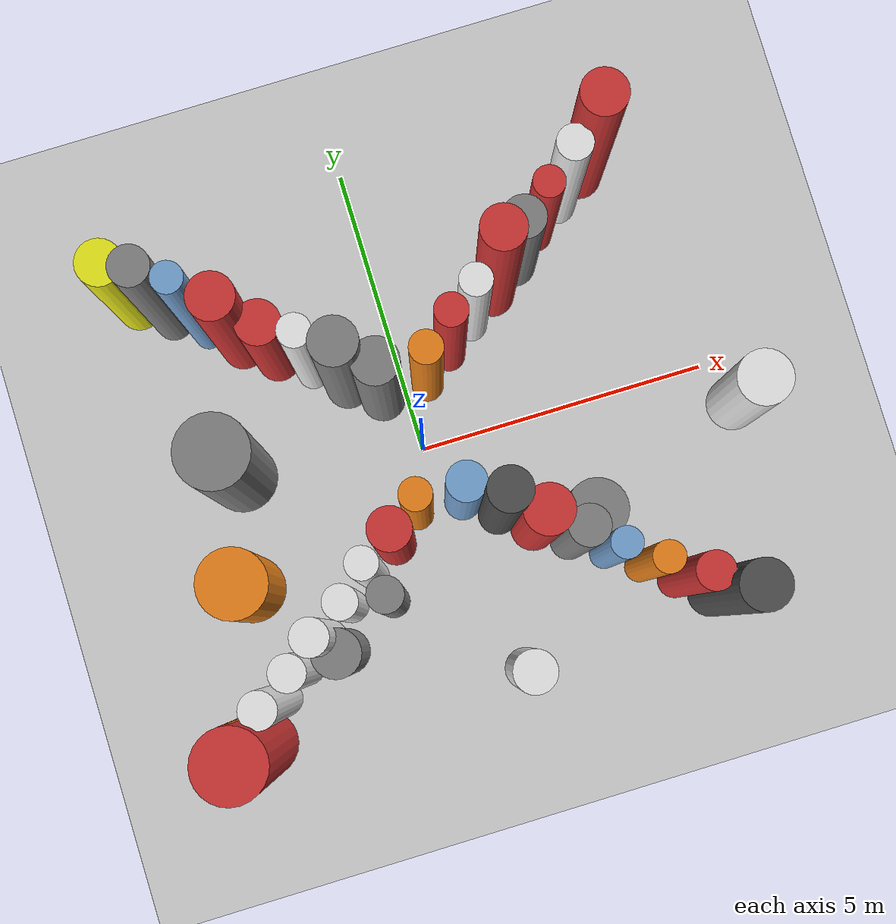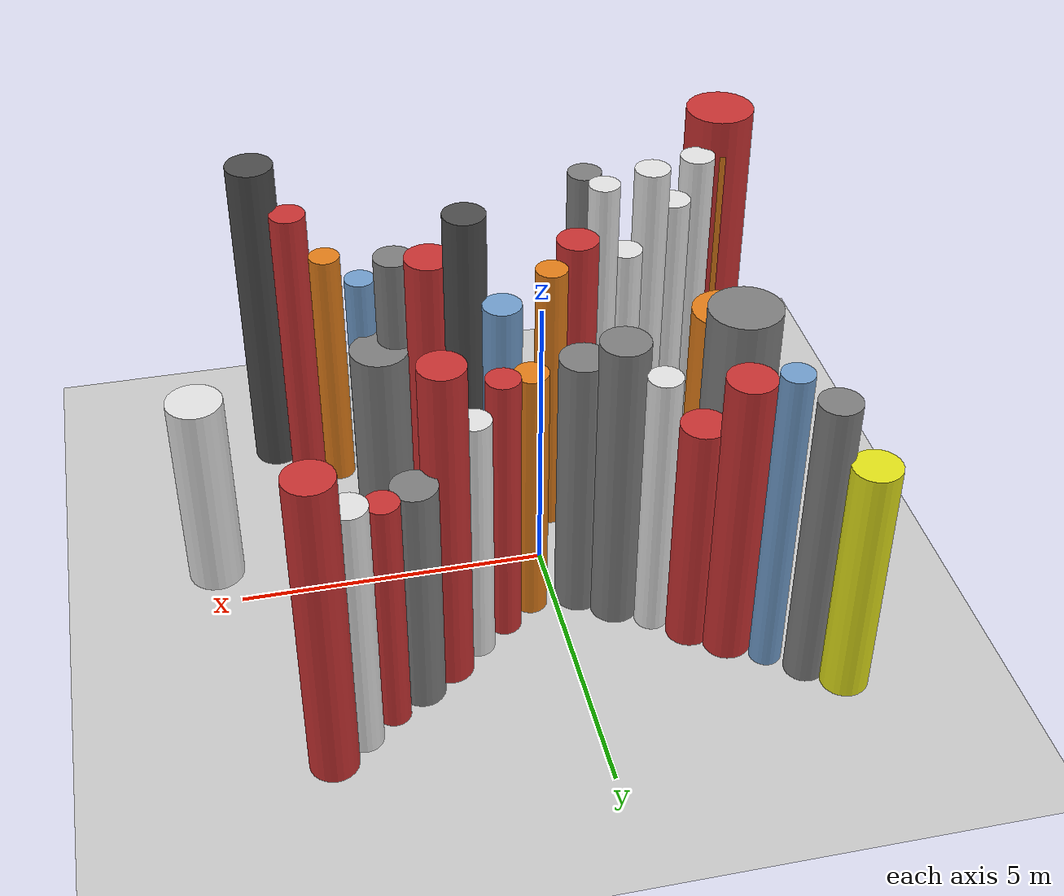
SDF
<?xml version='1.0'?>
<sdf version='1.6'>
  <world name='routeA_rl_v1__dense_recovery__rl_train__bottleneck_corridor__000068'>
    <!-- Sun light -->
    <light name='sun' type='directional'>
      <cast_shadows>1</cast_shadows>
      <pose>0 0 10 0 0 0</pose>
      <diffuse>0.8 0.8 0.8 1</diffuse>
      <specular>0.2 0.2 0.2 1</specular>
      <attenuation>
        <range>1000</range>
        <constant>0.9</constant>
        <linear>0.01</linear>
        <quadratic>0.001</quadratic>
      </attenuation>
      <direction>-0.5 0.1 -0.9</direction>
    </light>

    <!-- Ground plane -->
    <model name='ground_plane'>
      <static>1</static>
      <link name='link'>
        <collision name='collision'>
          <geometry>
            <plane>
              <normal>0 0 1</normal>
              <size>100 100</size>
            </plane>
          </geometry>
          <surface>
            <contact>
              <collide_bitmask>65535</collide_bitmask>
              <ode/>
            </contact>
            <friction>
              <ode>
                <mu>100</mu>
                <mu2>50</mu2>
              </ode>
              <torsional><ode/></torsional>
            </friction>
            <bounce/>
          </surface>
          <max_contacts>10</max_contacts>
        </collision>
        <visual name='visual'>
          <cast_shadows>0</cast_shadows>
          <geometry>
            <plane>
              <normal>0 0 1</normal>
              <size>100 100</size>
            </plane>
          </geometry>
          <material>
            <script>
              <uri>file://media/materials/scripts/gazebo.material</uri>
              <n>Gazebo/Grey</n>
            </script>
          </material>
        </visual>
      </link>
    </model>

    <!-- Environment -->
    <magnetic_field>6e-06 2.3e-05 -4.2e-05</magnetic_field>
    <atmosphere type='adiabatic'/>
    <physics name='default_physics' default='0' type='ode'>
      <gravity>0 0 -9.8</gravity>
      <max_step_size>0.004</max_step_size>
      <real_time_factor>1</real_time_factor>
      <real_time_update_rate>250</real_time_update_rate>
    </physics>
    <scene>
      <ambient>0.4 0.4 0.4 1</ambient>
      <background>0.7 0.7 0.7 1</background>
      <shadows>1</shadows>
    </scene>
    <wind/>
    <spherical_coordinates>
      <surface_model>EARTH_WGS84</surface_model>
      <latitude_deg>0</latitude_deg>
      <longitude_deg>0</longitude_deg>
      <elevation>0</elevation>
      <heading_deg>0</heading_deg>
    </spherical_coordinates>

    <!-- ============ OBSTACLES (40) ============ -->
    <model name='funnel_l_0'>
      <static>1</static>
      <link name='link'>
        <visual name='visual'>
          <geometry>
            <cylinder>
              <radius>0.3411</radius>
              <length>5.2813</length>
            </cylinder>
          </geometry>
          <material>
            <script>
              <n>Gazebo/Orange</n>
              <uri>file://media/materials/scripts/gazebo.material</uri>
            </script>
            <ambient>0.9 0.5 0.1 1</ambient>
          </material>
        </visual>
        <collision name='collision'>
          <geometry>
            <cylinder>
              <radius>0.3411</radius>
              <length>5.2813</length>
            </cylinder>
          </geometry>
          <max_contacts>10</max_contacts>
          <surface>
            <contact><ode/></contact>
            <bounce/>
            <friction>
              <ode><mu>1</mu><mu2>1</mu2></ode>
              <torsional><ode/></torsional>
            </friction>
          </surface>
        </collision>
      </link>
      <pose>-4.0000 -3.8000 2.6407 0 0 0.0000</pose>
    </model>

    <model name='funnel_r_0'>
      <static>1</static>
      <link name='link'>
        <visual name='visual'>
          <geometry>
            <cylinder>
              <radius>0.3788</radius>
              <length>4.2989</length>
            </cylinder>
          </geometry>
          <material>
            <script>
              <n>Gazebo/Yellow</n>
              <uri>file://media/materials/scripts/gazebo.material</uri>
            </script>
            <ambient>0.9 0.9 0.1 1</ambient>
          </material>
        </visual>
        <collision name='collision'>
          <geometry>
            <cylinder>
              <radius>0.3788</radius>
              <length>4.2989</length>
            </cylinder>
          </geometry>
          <max_contacts>10</max_contacts>
          <surface>
            <contact><ode/></contact>
            <bounce/>
            <friction>
              <ode><mu>1</mu><mu2>1</mu2></ode>
              <torsional><ode/></torsional>
            </friction>
          </surface>
        </collision>
      </link>
      <pose>-4.0000 3.8000 2.1495 0 0 0.0000</pose>
    </model>

    <model name='funnel_l_1'>
      <static>1</static>
      <link name='link'>
        <visual name='visual'>
          <geometry>
            <cylinder>
              <radius>0.2960</radius>
              <length>5.4035</length>
            </cylinder>
          </geometry>
          <material>
            <script>
              <n>Gazebo/White</n>
              <uri>file://media/materials/scripts/gazebo.material</uri>
            </script>
            <ambient>0.9 0.9 0.9 1</ambient>
          </material>
        </visual>
        <collision name='collision'>
          <geometry>
            <cylinder>
              <radius>0.2960</radius>
              <length>5.4035</length>
            </cylinder>
          </geometry>
          <max_contacts>10</max_contacts>
          <surface>
            <contact><ode/></contact>
            <bounce/>
            <friction>
              <ode><mu>1</mu><mu2>1</mu2></ode>
              <torsional><ode/></torsional>
            </friction>
          </surface>
        </collision>
      </link>
      <pose>-3.4857 -3.4071 2.7017 0 0 0.0000</pose>
    </model>

    <model name='funnel_r_1'>
      <static>1</static>
      <link name='link'>
        <visual name='visual'>
          <geometry>
            <cylinder>
              <radius>0.3290</radius>
              <length>5.2321</length>
            </cylinder>
          </geometry>
          <material>
            <script>
              <n>Gazebo/Grey</n>
              <uri>file://media/materials/scripts/gazebo.material</uri>
            </script>
            <ambient>0.5 0.5 0.5 1</ambient>
          </material>
        </visual>
        <collision name='collision'>
          <geometry>
            <cylinder>
              <radius>0.3290</radius>
              <length>5.2321</length>
            </cylinder>
          </geometry>
          <max_contacts>10</max_contacts>
          <surface>
            <contact><ode/></contact>
            <bounce/>
            <friction>
              <ode><mu>1</mu><mu2>1</mu2></ode>
              <torsional><ode/></torsional>
            </friction>
          </surface>
        </collision>
      </link>
      <pose>-3.4857 3.4071 2.6161 0 0 0.0000</pose>
    </model>

    <model name='funnel_l_2'>
      <static>1</static>
      <link name='link'>
        <visual name='visual'>
          <geometry>
            <cylinder>
              <radius>0.2939</radius>
              <length>4.8490</length>
            </cylinder>
          </geometry>
          <material>
            <script>
              <n>Gazebo/White</n>
              <uri>file://media/materials/scripts/gazebo.material</uri>
            </script>
            <ambient>0.9 0.9 0.9 1</ambient>
          </material>
        </visual>
        <collision name='collision'>
          <geometry>
            <cylinder>
              <radius>0.2939</radius>
              <length>4.8490</length>
            </cylinder>
          </geometry>
          <max_contacts>10</max_contacts>
          <surface>
            <contact><ode/></contact>
            <bounce/>
            <friction>
              <ode><mu>1</mu><mu2>1</mu2></ode>
              <torsional><ode/></torsional>
            </friction>
          </surface>
        </collision>
      </link>
      <pose>-2.9714 -3.0143 2.4245 0 0 0.0000</pose>
    </model>

    <model name='funnel_r_2'>
      <static>1</static>
      <link name='link'>
        <visual name='visual'>
          <geometry>
            <cylinder>
              <radius>0.2552</radius>
              <length>5.5260</length>
            </cylinder>
          </geometry>
          <material>
            <script>
              <n>Gazebo/Blue</n>
              <uri>file://media/materials/scripts/gazebo.material</uri>
            </script>
            <ambient>0.447 0.624 0.812 1</ambient>
          </material>
        </visual>
        <collision name='collision'>
          <geometry>
            <cylinder>
              <radius>0.2552</radius>
              <length>5.5260</length>
            </cylinder>
          </geometry>
          <max_contacts>10</max_contacts>
          <surface>
            <contact><ode/></contact>
            <bounce/>
            <friction>
              <ode><mu>1</mu><mu2>1</mu2></ode>
              <torsional><ode/></torsional>
            </friction>
          </surface>
        </collision>
      </link>
      <pose>-2.9714 3.0143 2.7630 0 0 0.0000</pose>
    </model>

    <model name='funnel_l_3'>
      <static>1</static>
      <link name='link'>
        <visual name='visual'>
          <geometry>
            <cylinder>
              <radius>0.2967</radius>
              <length>5.7166</length>
            </cylinder>
          </geometry>
          <material>
            <script>
              <n>Gazebo/White</n>
              <uri>file://media/materials/scripts/gazebo.material</uri>
            </script>
            <ambient>0.9 0.9 0.9 1</ambient>
          </material>
        </visual>
        <collision name='collision'>
          <geometry>
            <cylinder>
              <radius>0.2967</radius>
              <length>5.7166</length>
            </cylinder>
          </geometry>
          <max_contacts>10</max_contacts>
          <surface>
            <contact><ode/></contact>
            <bounce/>
            <friction>
              <ode><mu>1</mu><mu2>1</mu2></ode>
              <torsional><ode/></torsional>
            </friction>
          </surface>
        </collision>
      </link>
      <pose>-2.4571 -2.6214 2.8583 0 0 0.0000</pose>
    </model>

    <model name='funnel_r_3'>
      <static>1</static>
      <link name='link'>
        <visual name='visual'>
          <geometry>
            <cylinder>
              <radius>0.3820</radius>
              <length>5.2332</length>
            </cylinder>
          </geometry>
          <material>
            <script>
              <n>Gazebo/Red</n>
              <uri>file://media/materials/scripts/gazebo.material</uri>
            </script>
            <ambient>0.8 0.2 0.2 1</ambient>
          </material>
        </visual>
        <collision name='collision'>
          <geometry>
            <cylinder>
              <radius>0.3820</radius>
              <length>5.2332</length>
            </cylinder>
          </geometry>
          <max_contacts>10</max_contacts>
          <surface>
            <contact><ode/></contact>
            <bounce/>
            <friction>
              <ode><mu>1</mu><mu2>1</mu2></ode>
              <torsional><ode/></torsional>
            </friction>
          </surface>
        </collision>
      </link>
      <pose>-2.4571 2.6214 2.6166 0 0 0.0000</pose>
    </model>

    <model name='funnel_l_4'>
      <static>1</static>
      <link name='link'>
        <visual name='visual'>
          <geometry>
            <cylinder>
              <radius>0.2816</radius>
              <length>4.4778</length>
            </cylinder>
          </geometry>
          <material>
            <script>
              <n>Gazebo/White</n>
              <uri>file://media/materials/scripts/gazebo.material</uri>
            </script>
            <ambient>0.9 0.9 0.9 1</ambient>
          </material>
        </visual>
        <collision name='collision'>
          <geometry>
            <cylinder>
              <radius>0.2816</radius>
              <length>4.4778</length>
            </cylinder>
          </geometry>
          <max_contacts>10</max_contacts>
          <surface>
            <contact><ode/></contact>
            <bounce/>
            <friction>
              <ode><mu>1</mu><mu2>1</mu2></ode>
              <torsional><ode/></torsional>
            </friction>
          </surface>
        </collision>
      </link>
      <pose>-1.9429 -2.2286 2.2389 0 0 0.0000</pose>
    </model>

    <model name='funnel_r_4'>
      <static>1</static>
      <link name='link'>
        <visual name='visual'>
          <geometry>
            <cylinder>
              <radius>0.3685</radius>
              <length>4.2026</length>
            </cylinder>
          </geometry>
          <material>
            <script>
              <n>Gazebo/Red</n>
              <uri>file://media/materials/scripts/gazebo.material</uri>
            </script>
            <ambient>0.8 0.2 0.2 1</ambient>
          </material>
        </visual>
        <collision name='collision'>
          <geometry>
            <cylinder>
              <radius>0.3685</radius>
              <length>4.2026</length>
            </cylinder>
          </geometry>
          <max_contacts>10</max_contacts>
          <surface>
            <contact><ode/></contact>
            <bounce/>
            <friction>
              <ode><mu>1</mu><mu2>1</mu2></ode>
              <torsional><ode/></torsional>
            </friction>
          </surface>
        </collision>
      </link>
      <pose>-1.9429 2.2286 2.1013 0 0 0.0000</pose>
    </model>

    <model name='funnel_l_5'>
      <static>1</static>
      <link name='link'>
        <visual name='visual'>
          <geometry>
            <cylinder>
              <radius>0.2549</radius>
              <length>5.9978</length>
            </cylinder>
          </geometry>
          <material>
            <script>
              <n>Gazebo/White</n>
              <uri>file://media/materials/scripts/gazebo.material</uri>
            </script>
            <ambient>0.9 0.9 0.9 1</ambient>
          </material>
        </visual>
        <collision name='collision'>
          <geometry>
            <cylinder>
              <radius>0.2549</radius>
              <length>5.9978</length>
            </cylinder>
          </geometry>
          <max_contacts>10</max_contacts>
          <surface>
            <contact><ode/></contact>
            <bounce/>
            <friction>
              <ode><mu>1</mu><mu2>1</mu2></ode>
              <torsional><ode/></torsional>
            </friction>
          </surface>
        </collision>
      </link>
      <pose>-1.4286 -1.8357 2.9989 0 0 0.0000</pose>
    </model>

    <model name='funnel_r_5'>
      <static>1</static>
      <link name='link'>
        <visual name='visual'>
          <geometry>
            <cylinder>
              <radius>0.2727</radius>
              <length>4.8556</length>
            </cylinder>
          </geometry>
          <material>
            <script>
              <n>Gazebo/White</n>
              <uri>file://media/materials/scripts/gazebo.material</uri>
            </script>
            <ambient>0.9 0.9 0.9 1</ambient>
          </material>
        </visual>
        <collision name='collision'>
          <geometry>
            <cylinder>
              <radius>0.2727</radius>
              <length>4.8556</length>
            </cylinder>
          </geometry>
          <max_contacts>10</max_contacts>
          <surface>
            <contact><ode/></contact>
            <bounce/>
            <friction>
              <ode><mu>1</mu><mu2>1</mu2></ode>
              <torsional><ode/></torsional>
            </friction>
          </surface>
        </collision>
      </link>
      <pose>-1.4286 1.8357 2.4278 0 0 0.0000</pose>
    </model>

    <model name='funnel_l_6'>
      <static>1</static>
      <link name='link'>
        <visual name='visual'>
          <geometry>
            <cylinder>
              <radius>0.3438</radius>
              <length>5.2816</length>
            </cylinder>
          </geometry>
          <material>
            <script>
              <n>Gazebo/Red</n>
              <uri>file://media/materials/scripts/gazebo.material</uri>
            </script>
            <ambient>0.8 0.2 0.2 1</ambient>
          </material>
        </visual>
        <collision name='collision'>
          <geometry>
            <cylinder>
              <radius>0.3438</radius>
              <length>5.2816</length>
            </cylinder>
          </geometry>
          <max_contacts>10</max_contacts>
          <surface>
            <contact><ode/></contact>
            <bounce/>
            <friction>
              <ode><mu>1</mu><mu2>1</mu2></ode>
              <torsional><ode/></torsional>
            </friction>
          </surface>
        </collision>
      </link>
      <pose>-0.9143 -1.4429 2.6408 0 0 0.0000</pose>
    </model>

    <model name='funnel_r_6'>
      <static>1</static>
      <link name='link'>
        <visual name='visual'>
          <geometry>
            <cylinder>
              <radius>0.3908</radius>
              <length>5.2947</length>
            </cylinder>
          </geometry>
          <material>
            <script>
              <n>Gazebo/Grey</n>
              <uri>file://media/materials/scripts/gazebo.material</uri>
            </script>
            <ambient>0.5 0.5 0.5 1</ambient>
          </material>
        </visual>
        <collision name='collision'>
          <geometry>
            <cylinder>
              <radius>0.3908</radius>
              <length>5.2947</length>
            </cylinder>
          </geometry>
          <max_contacts>10</max_contacts>
          <surface>
            <contact><ode/></contact>
            <bounce/>
            <friction>
              <ode><mu>1</mu><mu2>1</mu2></ode>
              <torsional><ode/></torsional>
            </friction>
          </surface>
        </collision>
      </link>
      <pose>-0.9143 1.4429 2.6474 0 0 0.0000</pose>
    </model>

    <model name='funnel_l_7'>
      <static>1</static>
      <link name='link'>
        <visual name='visual'>
          <geometry>
            <cylinder>
              <radius>0.2621</radius>
              <length>5.0457</length>
            </cylinder>
          </geometry>
          <material>
            <script>
              <n>Gazebo/Orange</n>
              <uri>file://media/materials/scripts/gazebo.material</uri>
            </script>
            <ambient>0.9 0.5 0.1 1</ambient>
          </material>
        </visual>
        <collision name='collision'>
          <geometry>
            <cylinder>
              <radius>0.2621</radius>
              <length>5.0457</length>
            </cylinder>
          </geometry>
          <max_contacts>10</max_contacts>
          <surface>
            <contact><ode/></contact>
            <bounce/>
            <friction>
              <ode><mu>1</mu><mu2>1</mu2></ode>
              <torsional><ode/></torsional>
            </friction>
          </surface>
        </collision>
      </link>
      <pose>-0.4000 -1.0500 2.5228 0 0 0.0000</pose>
    </model>

    <model name='funnel_r_7'>
      <static>1</static>
      <link name='link'>
        <visual name='visual'>
          <geometry>
            <cylinder>
              <radius>0.3827</radius>
              <length>4.8131</length>
            </cylinder>
          </geometry>
          <material>
            <script>
              <n>Gazebo/Grey</n>
              <uri>file://media/materials/scripts/gazebo.material</uri>
            </script>
            <ambient>0.5 0.5 0.5 1</ambient>
          </material>
        </visual>
        <collision name='collision'>
          <geometry>
            <cylinder>
              <radius>0.3827</radius>
              <length>4.8131</length>
            </cylinder>
          </geometry>
          <max_contacts>10</max_contacts>
          <surface>
            <contact><ode/></contact>
            <bounce/>
            <friction>
              <ode><mu>1</mu><mu2>1</mu2></ode>
              <torsional><ode/></torsional>
            </friction>
          </surface>
        </collision>
      </link>
      <pose>-0.4000 1.0500 2.4065 0 0 0.0000</pose>
    </model>

    <model name='funnel_out_l_0'>
      <static>1</static>
      <link name='link'>
        <visual name='visual'>
          <geometry>
            <cylinder>
              <radius>0.3234</radius>
              <length>4.4893</length>
            </cylinder>
          </geometry>
          <material>
            <script>
              <n>Gazebo/Blue</n>
              <uri>file://media/materials/scripts/gazebo.material</uri>
            </script>
            <ambient>0.447 0.624 0.812 1</ambient>
          </material>
        </visual>
        <collision name='collision'>
          <geometry>
            <cylinder>
              <radius>0.3234</radius>
              <length>4.4893</length>
            </cylinder>
          </geometry>
          <max_contacts>10</max_contacts>
          <surface>
            <contact><ode/></contact>
            <bounce/>
            <friction>
              <ode><mu>1</mu><mu2>1</mu2></ode>
              <torsional><ode/></torsional>
            </friction>
          </surface>
        </collision>
      </link>
      <pose>0.4000 -1.0500 2.2447 0 0 0.0000</pose>
    </model>

    <model name='funnel_out_r_0'>
      <static>1</static>
      <link name='link'>
        <visual name='visual'>
          <geometry>
            <cylinder>
              <radius>0.2729</radius>
              <length>4.6591</length>
            </cylinder>
          </geometry>
          <material>
            <script>
              <n>Gazebo/Orange</n>
              <uri>file://media/materials/scripts/gazebo.material</uri>
            </script>
            <ambient>0.9 0.5 0.1 1</ambient>
          </material>
        </visual>
        <collision name='collision'>
          <geometry>
            <cylinder>
              <radius>0.2729</radius>
              <length>4.6591</length>
            </cylinder>
          </geometry>
          <max_contacts>10</max_contacts>
          <surface>
            <contact><ode/></contact>
            <bounce/>
            <friction>
              <ode><mu>1</mu><mu2>1</mu2></ode>
              <torsional><ode/></torsional>
            </friction>
          </surface>
        </collision>
      </link>
      <pose>0.4000 1.0500 2.3295 0 0 0.0000</pose>
    </model>

    <model name='funnel_out_l_1'>
      <static>1</static>
      <link name='link'>
        <visual name='visual'>
          <geometry>
            <cylinder>
              <radius>0.3497</radius>
              <length>5.9826</length>
            </cylinder>
          </geometry>
          <material>
            <script>
              <n>Gazebo/DarkGrey</n>
              <uri>file://media/materials/scripts/gazebo.material</uri>
            </script>
            <ambient>0.3 0.3 0.3 1</ambient>
          </material>
        </visual>
        <collision name='collision'>
          <geometry>
            <cylinder>
              <radius>0.3497</radius>
              <length>5.9826</length>
            </cylinder>
          </geometry>
          <max_contacts>10</max_contacts>
          <surface>
            <contact><ode/></contact>
            <bounce/>
            <friction>
              <ode><mu>1</mu><mu2>1</mu2></ode>
              <torsional><ode/></torsional>
            </friction>
          </surface>
        </collision>
      </link>
      <pose>0.9143 -1.4429 2.9913 0 0 0.0000</pose>
    </model>

    <model name='funnel_out_r_1'>
      <static>1</static>
      <link name='link'>
        <visual name='visual'>
          <geometry>
            <cylinder>
              <radius>0.2698</radius>
              <length>4.9135</length>
            </cylinder>
          </geometry>
          <material>
            <script>
              <n>Gazebo/Red</n>
              <uri>file://media/materials/scripts/gazebo.material</uri>
            </script>
            <ambient>0.8 0.2 0.2 1</ambient>
          </material>
        </visual>
        <collision name='collision'>
          <geometry>
            <cylinder>
              <radius>0.2698</radius>
              <length>4.9135</length>
            </cylinder>
          </geometry>
          <max_contacts>10</max_contacts>
          <surface>
            <contact><ode/></contact>
            <bounce/>
            <friction>
              <ode><mu>1</mu><mu2>1</mu2></ode>
              <torsional><ode/></torsional>
            </friction>
          </surface>
        </collision>
      </link>
      <pose>0.9143 1.4429 2.4567 0 0 0.0000</pose>
    </model>

    <model name='funnel_out_l_2'>
      <static>1</static>
      <link name='link'>
        <visual name='visual'>
          <geometry>
            <cylinder>
              <radius>0.3993</radius>
              <length>5.0258</length>
            </cylinder>
          </geometry>
          <material>
            <script>
              <n>Gazebo/Red</n>
              <uri>file://media/materials/scripts/gazebo.material</uri>
            </script>
            <ambient>0.8 0.2 0.2 1</ambient>
          </material>
        </visual>
        <collision name='collision'>
          <geometry>
            <cylinder>
              <radius>0.3993</radius>
              <length>5.0258</length>
            </cylinder>
          </geometry>
          <max_contacts>10</max_contacts>
          <surface>
            <contact><ode/></contact>
            <bounce/>
            <friction>
              <ode><mu>1</mu><mu2>1</mu2></ode>
              <torsional><ode/></torsional>
            </friction>
          </surface>
        </collision>
      </link>
      <pose>1.4286 -1.8357 2.5129 0 0 0.0000</pose>
    </model>

    <model name='funnel_out_r_2'>
      <static>1</static>
      <link name='link'>
        <visual name='visual'>
          <geometry>
            <cylinder>
              <radius>0.2692</radius>
              <length>4.5391</length>
            </cylinder>
          </geometry>
          <material>
            <script>
              <n>Gazebo/White</n>
              <uri>file://media/materials/scripts/gazebo.material</uri>
            </script>
            <ambient>0.9 0.9 0.9 1</ambient>
          </material>
        </visual>
        <collision name='collision'>
          <geometry>
            <cylinder>
              <radius>0.2692</radius>
              <length>4.5391</length>
            </cylinder>
          </geometry>
          <max_contacts>10</max_contacts>
          <surface>
            <contact><ode/></contact>
            <bounce/>
            <friction>
              <ode><mu>1</mu><mu2>1</mu2></ode>
              <torsional><ode/></torsional>
            </friction>
          </surface>
        </collision>
      </link>
      <pose>1.4286 1.8357 2.2696 0 0 0.0000</pose>
    </model>

    <model name='funnel_out_l_3'>
      <static>1</static>
      <link name='link'>
        <visual name='visual'>
          <geometry>
            <cylinder>
              <radius>0.3284</radius>
              <length>4.8631</length>
            </cylinder>
          </geometry>
          <material>
            <script>
              <n>Gazebo/Grey</n>
              <uri>file://media/materials/scripts/gazebo.material</uri>
            </script>
            <ambient>0.5 0.5 0.5 1</ambient>
          </material>
        </visual>
        <collision name='collision'>
          <geometry>
            <cylinder>
              <radius>0.3284</radius>
              <length>4.8631</length>
            </cylinder>
          </geometry>
          <max_contacts>10</max_contacts>
          <surface>
            <contact><ode/></contact>
            <bounce/>
            <friction>
              <ode><mu>1</mu><mu2>1</mu2></ode>
              <torsional><ode/></torsional>
            </friction>
          </surface>
        </collision>
      </link>
      <pose>1.9429 -2.2286 2.4316 0 0 0.0000</pose>
    </model>

    <model name='funnel_out_r_3'>
      <static>1</static>
      <link name='link'>
        <visual name='visual'>
          <geometry>
            <cylinder>
              <radius>0.3608</radius>
              <length>5.8644</length>
            </cylinder>
          </geometry>
          <material>
            <script>
              <n>Gazebo/Red</n>
              <uri>file://media/materials/scripts/gazebo.material</uri>
            </script>
            <ambient>0.8 0.2 0.2 1</ambient>
          </material>
        </visual>
        <collision name='collision'>
          <geometry>
            <cylinder>
              <radius>0.3608</radius>
              <length>5.8644</length>
            </cylinder>
          </geometry>
          <max_contacts>10</max_contacts>
          <surface>
            <contact><ode/></contact>
            <bounce/>
            <friction>
              <ode><mu>1</mu><mu2>1</mu2></ode>
              <torsional><ode/></torsional>
            </friction>
          </surface>
        </collision>
      </link>
      <pose>1.9429 2.2286 2.9322 0 0 0.0000</pose>
    </model>

    <model name='funnel_out_l_4'>
      <static>1</static>
      <link name='link'>
        <visual name='visual'>
          <geometry>
            <cylinder>
              <radius>0.2558</radius>
              <length>4.2677</length>
            </cylinder>
          </geometry>
          <material>
            <script>
              <n>Gazebo/Blue</n>
              <uri>file://media/materials/scripts/gazebo.material</uri>
            </script>
            <ambient>0.447 0.624 0.812 1</ambient>
          </material>
        </visual>
        <collision name='collision'>
          <geometry>
            <cylinder>
              <radius>0.2558</radius>
              <length>4.2677</length>
            </cylinder>
          </geometry>
          <max_contacts>10</max_contacts>
          <surface>
            <contact><ode/></contact>
            <bounce/>
            <friction>
              <ode><mu>1</mu><mu2>1</mu2></ode>
              <torsional><ode/></torsional>
            </friction>
          </surface>
        </collision>
      </link>
      <pose>2.4571 -2.6214 2.1338 0 0 0.0000</pose>
    </model>

    <model name='funnel_out_r_4'>
      <static>1</static>
      <link name='link'>
        <visual name='visual'>
          <geometry>
            <cylinder>
              <radius>0.3553</radius>
              <length>4.1299</length>
            </cylinder>
          </geometry>
          <material>
            <script>
              <n>Gazebo/Grey</n>
              <uri>file://media/materials/scripts/gazebo.material</uri>
            </script>
            <ambient>0.5 0.5 0.5 1</ambient>
          </material>
        </visual>
        <collision name='collision'>
          <geometry>
            <cylinder>
              <radius>0.3553</radius>
              <length>4.1299</length>
            </cylinder>
          </geometry>
          <max_contacts>10</max_contacts>
          <surface>
            <contact><ode/></contact>
            <bounce/>
            <friction>
              <ode><mu>1</mu><mu2>1</mu2></ode>
              <torsional><ode/></torsional>
            </friction>
          </surface>
        </collision>
      </link>
      <pose>2.4571 2.6214 2.0649 0 0 0.0000</pose>
    </model>

    <model name='funnel_out_l_5'>
      <static>1</static>
      <link name='link'>
        <visual name='visual'>
          <geometry>
            <cylinder>
              <radius>0.2593</radius>
              <length>4.5254</length>
            </cylinder>
          </geometry>
          <material>
            <script>
              <n>Gazebo/Orange</n>
              <uri>file://media/materials/scripts/gazebo.material</uri>
            </script>
            <ambient>0.9 0.5 0.1 1</ambient>
          </material>
        </visual>
        <collision name='collision'>
          <geometry>
            <cylinder>
              <radius>0.2593</radius>
              <length>4.5254</length>
            </cylinder>
          </geometry>
          <max_contacts>10</max_contacts>
          <surface>
            <contact><ode/></contact>
            <bounce/>
            <friction>
              <ode><mu>1</mu><mu2>1</mu2></ode>
              <torsional><ode/></torsional>
            </friction>
          </surface>
        </collision>
      </link>
      <pose>2.9714 -3.0143 2.2627 0 0 0.0000</pose>
    </model>

    <model name='funnel_out_r_5'>
      <static>1</static>
      <link name='link'>
        <visual name='visual'>
          <geometry>
            <cylinder>
              <radius>0.2625</radius>
              <length>4.2459</length>
            </cylinder>
          </geometry>
          <material>
            <script>
              <n>Gazebo/Red</n>
              <uri>file://media/materials/scripts/gazebo.material</uri>
            </script>
            <ambient>0.8 0.2 0.2 1</ambient>
          </material>
        </visual>
        <collision name='collision'>
          <geometry>
            <cylinder>
              <radius>0.2625</radius>
              <length>4.2459</length>
            </cylinder>
          </geometry>
          <max_contacts>10</max_contacts>
          <surface>
            <contact><ode/></contact>
            <bounce/>
            <friction>
              <ode><mu>1</mu><mu2>1</mu2></ode>
              <torsional><ode/></torsional>
            </friction>
          </surface>
        </collision>
      </link>
      <pose>2.9714 3.0143 2.1230 0 0 0.0000</pose>
    </model>

    <model name='funnel_out_l_6'>
      <static>1</static>
      <link name='link'>
        <visual name='visual'>
          <geometry>
            <cylinder>
              <radius>0.3048</radius>
              <length>5.1604</length>
            </cylinder>
          </geometry>
          <material>
            <script>
              <n>Gazebo/Red</n>
              <uri>file://media/materials/scripts/gazebo.material</uri>
            </script>
            <ambient>0.8 0.2 0.2 1</ambient>
          </material>
        </visual>
        <collision name='collision'>
          <geometry>
            <cylinder>
              <radius>0.3048</radius>
              <length>5.1604</length>
            </cylinder>
          </geometry>
          <max_contacts>10</max_contacts>
          <surface>
            <contact><ode/></contact>
            <bounce/>
            <friction>
              <ode><mu>1</mu><mu2>1</mu2></ode>
              <torsional><ode/></torsional>
            </friction>
          </surface>
        </collision>
      </link>
      <pose>3.4857 -3.4071 2.5802 0 0 0.0000</pose>
    </model>

    <model name='funnel_out_r_6'>
      <static>1</static>
      <link name='link'>
        <visual name='visual'>
          <geometry>
            <cylinder>
              <radius>0.2947</radius>
              <length>4.5979</length>
            </cylinder>
          </geometry>
          <material>
            <script>
              <n>Gazebo/White</n>
              <uri>file://media/materials/scripts/gazebo.material</uri>
            </script>
            <ambient>0.9 0.9 0.9 1</ambient>
          </material>
        </visual>
        <collision name='collision'>
          <geometry>
            <cylinder>
              <radius>0.2947</radius>
              <length>4.5979</length>
            </cylinder>
          </geometry>
          <max_contacts>10</max_contacts>
          <surface>
            <contact><ode/></contact>
            <bounce/>
            <friction>
              <ode><mu>1</mu><mu2>1</mu2></ode>
              <torsional><ode/></torsional>
            </friction>
          </surface>
        </collision>
      </link>
      <pose>3.4857 3.4071 2.2990 0 0 0.0000</pose>
    </model>

    <model name='funnel_out_l_7'>
      <static>1</static>
      <link name='link'>
        <visual name='visual'>
          <geometry>
            <cylinder>
              <radius>0.3959</radius>
              <length>5.9083</length>
            </cylinder>
          </geometry>
          <material>
            <script>
              <n>Gazebo/DarkGrey</n>
              <uri>file://media/materials/scripts/gazebo.material</uri>
            </script>
            <ambient>0.3 0.3 0.3 1</ambient>
          </material>
        </visual>
        <collision name='collision'>
          <geometry>
            <cylinder>
              <radius>0.3959</radius>
              <length>5.9083</length>
            </cylinder>
          </geometry>
          <max_contacts>10</max_contacts>
          <surface>
            <contact><ode/></contact>
            <bounce/>
            <friction>
              <ode><mu>1</mu><mu2>1</mu2></ode>
              <torsional><ode/></torsional>
            </friction>
          </surface>
        </collision>
      </link>
      <pose>4.0000 -3.8000 2.9541 0 0 0.0000</pose>
    </model>

    <model name='funnel_out_r_7'>
      <static>1</static>
      <link name='link'>
        <visual name='visual'>
          <geometry>
            <cylinder>
              <radius>0.3788</radius>
              <length>5.5099</length>
            </cylinder>
          </geometry>
          <material>
            <script>
              <n>Gazebo/Red</n>
              <uri>file://media/materials/scripts/gazebo.material</uri>
            </script>
            <ambient>0.8 0.2 0.2 1</ambient>
          </material>
        </visual>
        <collision name='collision'>
          <geometry>
            <cylinder>
              <radius>0.3788</radius>
              <length>5.5099</length>
            </cylinder>
          </geometry>
          <max_contacts>10</max_contacts>
          <surface>
            <contact><ode/></contact>
            <bounce/>
            <friction>
              <ode><mu>1</mu><mu2>1</mu2></ode>
              <torsional><ode/></torsional>
            </friction>
          </surface>
        </collision>
      </link>
      <pose>4.0000 3.8000 2.7549 0 0 0.0000</pose>
    </model>

    <model name='bn_scatter_0'>
      <static>1</static>
      <link name='link'>
        <visual name='visual'>
          <geometry>
            <cylinder>
              <radius>0.5771</radius>
              <length>5.9216</length>
            </cylinder>
          </geometry>
          <material>
            <script>
              <n>Gazebo/Red</n>
              <uri>file://media/materials/scripts/gazebo.material</uri>
            </script>
            <ambient>0.8 0.2 0.2 1</ambient>
          </material>
        </visual>
        <collision name='collision'>
          <geometry>
            <cylinder>
              <radius>0.5771</radius>
              <length>5.9216</length>
            </cylinder>
          </geometry>
          <max_contacts>10</max_contacts>
          <surface>
            <contact><ode/></contact>
            <bounce/>
            <friction>
              <ode><mu>1</mu><mu2>1</mu2></ode>
              <torsional><ode/></torsional>
            </friction>
          </surface>
        </collision>
      </link>
      <pose>-4.0393 -4.0327 2.9608 0 0 0.0000</pose>
    </model>

    <model name='bn_scatter_1'>
      <static>1</static>
      <link name='link'>
        <visual name='visual'>
          <geometry>
            <cylinder>
              <radius>0.4964</radius>
              <length>3.2649</length>
            </cylinder>
          </geometry>
          <material>
            <script>
              <n>Gazebo/Grey</n>
              <uri>file://media/materials/scripts/gazebo.material</uri>
            </script>
            <ambient>0.5 0.5 0.5 1</ambient>
          </material>
        </visual>
        <collision name='collision'>
          <geometry>
            <cylinder>
              <radius>0.4964</radius>
              <length>3.2649</length>
            </cylinder>
          </geometry>
          <max_contacts>10</max_contacts>
          <surface>
            <contact><ode/></contact>
            <bounce/>
            <friction>
              <ode><mu>1</mu><mu2>1</mu2></ode>
              <torsional><ode/></torsional>
            </friction>
          </surface>
        </collision>
      </link>
      <pose>2.2786 -1.9746 1.6324 0 0 0.0000</pose>
    </model>

    <model name='bn_scatter_2'>
      <static>1</static>
      <link name='link'>
        <visual name='visual'>
          <geometry>
            <cylinder>
              <radius>0.5764</radius>
              <length>3.5798</length>
            </cylinder>
          </geometry>
          <material>
            <script>
              <n>Gazebo/Orange</n>
              <uri>file://media/materials/scripts/gazebo.material</uri>
            </script>
            <ambient>0.9 0.5 0.1 1</ambient>
          </material>
        </visual>
        <collision name='collision'>
          <geometry>
            <cylinder>
              <radius>0.5764</radius>
              <length>3.5798</length>
            </cylinder>
          </geometry>
          <max_contacts>10</max_contacts>
          <surface>
            <contact><ode/></contact>
            <bounce/>
            <friction>
              <ode><mu>1</mu><mu2>1</mu2></ode>
              <torsional><ode/></torsional>
            </friction>
          </surface>
        </collision>
      </link>
      <pose>-3.4974 -1.4492 1.7899 0 0 0.0000</pose>
    </model>

    <model name='bn_scatter_3'>
      <static>1</static>
      <link name='link'>
        <visual name='visual'>
          <geometry>
            <cylinder>
              <radius>0.3585</radius>
              <length>3.4595</length>
            </cylinder>
          </geometry>
          <material>
            <script>
              <n>Gazebo/White</n>
              <uri>file://media/materials/scripts/gazebo.material</uri>
            </script>
            <ambient>0.9 0.9 0.9 1</ambient>
          </material>
        </visual>
        <collision name='collision'>
          <geometry>
            <cylinder>
              <radius>0.3585</radius>
              <length>3.4595</length>
            </cylinder>
          </geometry>
          <max_contacts>10</max_contacts>
          <surface>
            <contact><ode/></contact>
            <bounce/>
            <friction>
              <ode><mu>1</mu><mu2>1</mu2></ode>
              <torsional><ode/></torsional>
            </friction>
          </surface>
        </collision>
      </link>
      <pose>0.5933 -4.1008 1.7298 0 0 0.0000</pose>
    </model>

    <model name='bn_scatter_4'>
      <static>1</static>
      <link name='link'>
        <visual name='visual'>
          <geometry>
            <cylinder>
              <radius>0.2783</radius>
              <length>5.9467</length>
            </cylinder>
          </geometry>
          <material>
            <script>
              <n>Gazebo/Grey</n>
              <uri>file://media/materials/scripts/gazebo.material</uri>
            </script>
            <ambient>0.5 0.5 0.5 1</ambient>
          </material>
        </visual>
        <collision name='collision'>
          <geometry>
            <cylinder>
              <radius>0.2783</radius>
              <length>5.9467</length>
            </cylinder>
          </geometry>
          <max_contacts>10</max_contacts>
          <surface>
            <contact><ode/></contact>
            <bounce/>
            <friction>
              <ode><mu>1</mu><mu2>1</mu2></ode>
              <torsional><ode/></torsional>
            </friction>
          </surface>
        </collision>
      </link>
      <pose>-1.2345 -2.3586 2.9734 0 0 0.0000</pose>
    </model>

    <model name='bn_scatter_5'>
      <static>1</static>
      <link name='link'>
        <visual name='visual'>
          <geometry>
            <cylinder>
              <radius>0.5963</radius>
              <length>4.9047</length>
            </cylinder>
          </geometry>
          <material>
            <script>
              <n>Gazebo/Grey</n>
              <uri>file://media/materials/scripts/gazebo.material</uri>
            </script>
            <ambient>0.5 0.5 0.5 1</ambient>
          </material>
        </visual>
        <collision name='collision'>
          <geometry>
            <cylinder>
              <radius>0.5963</radius>
              <length>4.9047</length>
            </cylinder>
          </geometry>
          <max_contacts>10</max_contacts>
          <surface>
            <contact><ode/></contact>
            <bounce/>
            <friction>
              <ode><mu>1</mu><mu2>1</mu2></ode>
              <torsional><ode/></torsional>
            </friction>
          </surface>
        </collision>
      </link>
      <pose>-3.1107 0.4432 2.4523 0 0 0.0000</pose>
    </model>

    <model name='bn_scatter_6'>
      <static>1</static>
      <link name='link'>
        <visual name='visual'>
          <geometry>
            <cylinder>
              <radius>0.4570</radius>
              <length>3.5702</length>
            </cylinder>
          </geometry>
          <material>
            <script>
              <n>Gazebo/White</n>
              <uri>file://media/materials/scripts/gazebo.material</uri>
            </script>
            <ambient>0.9 0.9 0.9 1</ambient>
          </material>
        </visual>
        <collision name='collision'>
          <geometry>
            <cylinder>
              <radius>0.4570</radius>
              <length>3.5702</length>
            </cylinder>
          </geometry>
          <max_contacts>10</max_contacts>
          <surface>
            <contact><ode/></contact>
            <bounce/>
            <friction>
              <ode><mu>1</mu><mu2>1</mu2></ode>
              <torsional><ode/></torsional>
            </friction>
          </surface>
        </collision>
      </link>
      <pose>5.3590 -0.7838 1.7851 0 0 0.0000</pose>
    </model>

    <model name='bn_scatter_7'>
      <static>1</static>
      <link name='link'>
        <visual name='visual'>
          <geometry>
            <cylinder>
              <radius>0.3955</radius>
              <length>3.8977</length>
            </cylinder>
          </geometry>
          <material>
            <script>
              <n>Gazebo/Grey</n>
              <uri>file://media/materials/scripts/gazebo.material</uri>
            </script>
            <ambient>0.5 0.5 0.5 1</ambient>
          </material>
        </visual>
        <collision name='collision'>
          <geometry>
            <cylinder>
              <radius>0.3955</radius>
              <length>3.8977</length>
            </cylinder>
          </geometry>
          <max_contacts>10</max_contacts>
          <surface>
            <contact><ode/></contact>
            <bounce/>
            <friction>
              <ode><mu>1</mu><mu2>1</mu2></ode>
              <torsional><ode/></torsional>
            </friction>
          </surface>
        </collision>
      </link>
      <pose>-2.2462 -2.9412 1.9489 0 0 0.0000</pose>
    </model>

    <!-- GUI camera -->
    <gui fullscreen='0'>
      <camera name='user_camera'>
        <pose>-15 0 18 0 0.85 0.15</pose>
        <view_controller>orbit</view_controller>
        <projection_type>perspective</projection_type>
      </camera>
    </gui>
  </world>
</sdf>
